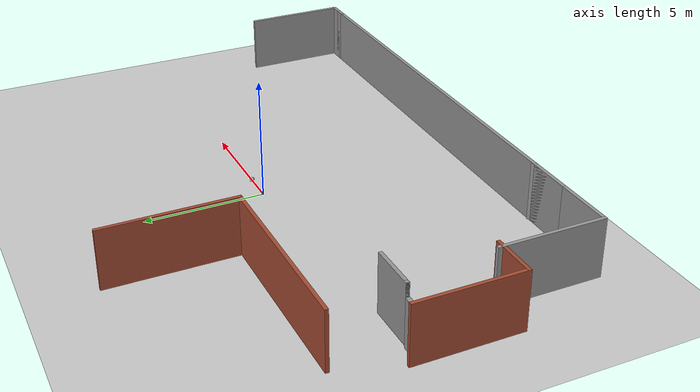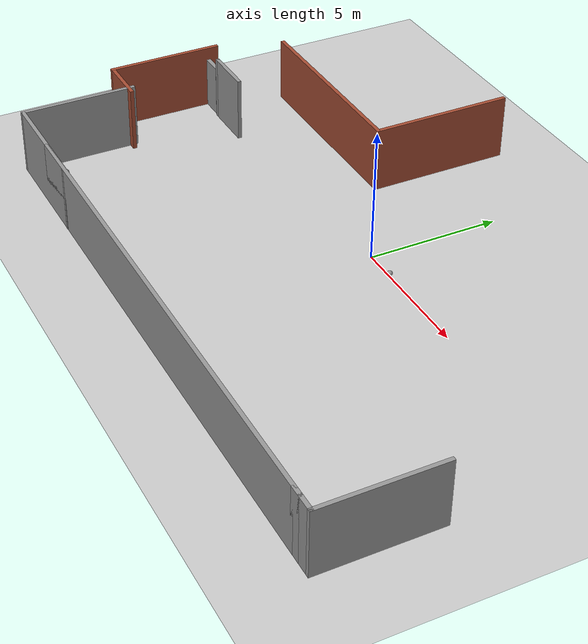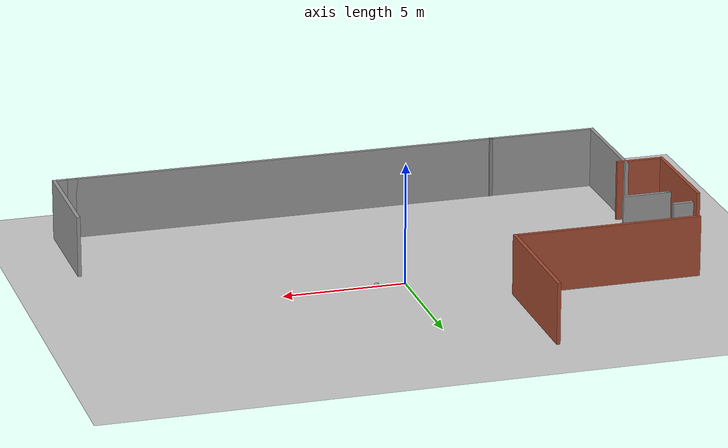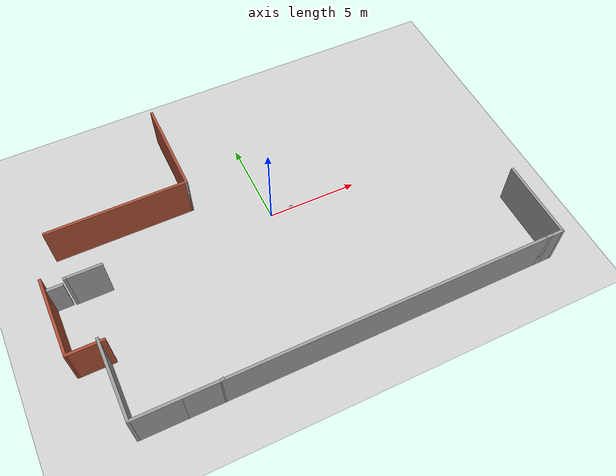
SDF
<sdf version="1.6">
 <world name="default">
  <model name="ground_plane">
   <static>1</static>
   <link name="link">
    <collision name="collision">
     <geometry><plane><normal>0 0 1</normal><size>100 100</size></plane></geometry>
     <surface>
      <contact><collide_bitmask>65535</collide_bitmask></contact>
      <friction><ode><mu>100</mu><mu2>50</mu2></ode></friction>
     </surface>
    </collision>
    <visual name="visual">
     <cast_shadows>0</cast_shadows>
     <geometry><plane><normal>0 0 1</normal><size>100 100</size></plane></geometry>
     <material>
      <script><uri>file://media/materials/scripts/gazebo.material</uri><name>Gazebo/Grey</name></script>
     </material>
    </visual>
   </link>
  </model>
  <model name="my_ball">
   <link name="link">
    <inertial>
     <mass>1</mass>
     <inertia><ixx>0.1</ixx><ixy>0</ixy><ixz>0</ixz><iyy>0.1</iyy><iyz>0</iyz><izz>0.1</izz></inertia>
    </inertial>
    <visual name="visual">
     <geometry><sphere><radius>0.1</radius></sphere></geometry>
     <material>
      <script><name>Gazebo/Grey</name><uri>file://media/materials/scripts/gazebo.material</uri></script>
      <shader type="pixel"><normal_map>__default__</normal_map></shader>
      <ambient>1 1 1 1</ambient>
      <diffuse>1 1 1 1</diffuse>
      <specular>1 1 1 1</specular>
      <emissive>1 1 1 1</emissive>
     </material>
    </visual>
    <collision name="collision">
     <geometry><sphere><radius>0.1</radius></sphere></geometry>
     <surface>
      <friction>
       <ode><mu>1</mu><mu2>1</mu2><fdir1>0 0 0</fdir1><slip1>0</slip1><slip2>0</slip2></ode>
       <torsional>
        <coefficient>1</coefficient>
        <patch_radius>0</patch_radius>
        <surface_radius>0</surface_radius>
        <use_patch_radius>1</use_patch_radius>
        <ode><slip>0</slip></ode>
       </torsional>
      </friction>
      <bounce><restitution_coefficient>0</restitution_coefficient><threshold>1e+06</threshold></bounce>
      <contact>
       <collide_without_contact>0</collide_without_contact>
       <collide_without_contact_bitmask>1</collide_without_contact_bitmask>
       <collide_bitmask>1</collide_bitmask>
       <ode>
        <soft_cfm>0</soft_cfm>
        <soft_erp>0.2</soft_erp>
        <kp>1e+13</kp>
        <kd>1</kd>
        <max_vel>0.01</max_vel>
        <min_depth>0</min_depth>
       </ode>
       <bullet>
        <split_impulse>1</split_impulse>
        <split_impulse_penetration_threshold>-0.01</split_impulse_penetration_threshold>
        <soft_cfm>0</soft_cfm>
        <soft_erp>0.2</soft_erp>
        <kp>1e+13</kp>
        <kd>1</kd>
       </bullet>
      </contact>
     </surface>
    </collision>
   </link>
   <static>0</static>
   <pose>1.2011 0.032789 0.1 0 -0 0</pose>
  </model>
  <model name="homeOffice.world">
   <link name="Wall_10">
    <pose>11.125 -2.16657 0 0 -0 0</pose>
    <visual name="Wall_10_Visual">
     <pose>0 0 1.25 0 -0 0</pose>
     <geometry><box><size>0.75 0.15 2.5</size></box></geometry>
     <material>
      <script><uri>file://media/materials/scripts/gazebo.material</uri><name>Gazebo/Grey</name></script>
      <ambient>1 1 1 1</ambient>
      <shader type="pixel"/>
      <diffuse>0.7 0.7 0.7 1</diffuse>
      <specular>0.01 0.01 0.01 1</specular>
      <emissive>0 0 0 1</emissive>
     </material>
     <meta><layer>0</layer></meta>
    </visual>
    <collision name="Wall_10_Collision">
     <pose>0 0 1.25 0 -0 0</pose>
     <geometry><box><size>0.75 0.15 2.5</size></box></geometry>
     <surface>
      <friction>
       <ode><mu>1</mu><mu2>1</mu2><fdir1>0 0 0</fdir1><slip1>0</slip1><slip2>0</slip2></ode>
       <torsional>
        <coefficient>1</coefficient>
        <patch_radius>0</patch_radius>
        <surface_radius>0</surface_radius>
        <use_patch_radius>1</use_patch_radius>
        <ode><slip>0</slip></ode>
       </torsional>
      </friction>
      <bounce><restitution_coefficient>0</restitution_coefficient><threshold>1e+06</threshold></bounce>
      <contact>
       <collide_without_contact>0</collide_without_contact>
       <collide_without_contact_bitmask>1</collide_without_contact_bitmask>
       <collide_bitmask>1</collide_bitmask>
       <ode>
        <soft_cfm>0</soft_cfm>
        <soft_erp>0.2</soft_erp>
        <kp>1e+13</kp>
        <kd>1</kd>
        <max_vel>0.01</max_vel>
        <min_depth>0</min_depth>
       </ode>
       <bullet>
        <split_impulse>1</split_impulse>
        <split_impulse_penetration_threshold>-0.01</split_impulse_penetration_threshold>
        <soft_cfm>0</soft_cfm>
        <soft_erp>0.2</soft_erp>
        <kp>1e+13</kp>
        <kd>1</kd>
       </bullet>
      </contact>
     </surface>
    </collision>
   </link>
   <link name="Wall_11">
    <pose>11.425 0.008428 0 0 -0 1.5708</pose>
    <visual name="Wall_11_Visual">
     <pose>0 0 1.25 0 -0 0</pose>
     <geometry><box><size>4.5 0.15 2.5</size></box></geometry>
     <material>
      <script><uri>file://media/materials/scripts/gazebo.material</uri><name>Gazebo/Grey</name></script>
      <ambient>1 1 1 1</ambient>
      <shader type="pixel"/>
      <diffuse>0.7 0.7 0.7 1</diffuse>
      <specular>0.01 0.01 0.01 1</specular>
      <emissive>0 0 0 1</emissive>
     </material>
     <meta><layer>0</layer></meta>
    </visual>
    <collision name="Wall_11_Collision">
     <pose>0 0 1.25 0 -0 0</pose>
     <geometry><box><size>4.5 0.15 2.5</size></box></geometry>
     <surface>
      <friction>
       <ode><mu>1</mu><mu2>1</mu2><fdir1>0 0 0</fdir1><slip1>0</slip1><slip2>0</slip2></ode>
       <torsional>
        <coefficient>1</coefficient>
        <patch_radius>0</patch_radius>
        <surface_radius>0</surface_radius>
        <use_patch_radius>1</use_patch_radius>
        <ode><slip>0</slip></ode>
       </torsional>
      </friction>
      <bounce><restitution_coefficient>0</restitution_coefficient><threshold>1e+06</threshold></bounce>
      <contact>
       <collide_without_contact>0</collide_without_contact>
       <collide_without_contact_bitmask>1</collide_without_contact_bitmask>
       <collide_bitmask>1</collide_bitmask>
       <ode>
        <soft_cfm>0</soft_cfm>
        <soft_erp>0.2</soft_erp>
        <kp>1e+13</kp>
        <kd>1</kd>
        <max_vel>0.01</max_vel>
        <min_depth>0</min_depth>
       </ode>
       <bullet>
        <split_impulse>1</split_impulse>
        <split_impulse_penetration_threshold>-0.01</split_impulse_penetration_threshold>
        <soft_cfm>0</soft_cfm>
        <soft_erp>0.2</soft_erp>
        <kp>1e+13</kp>
        <kd>1</kd>
       </bullet>
      </contact>
     </surface>
    </collision>
   </link>
   <link name="Wall_14">
    <pose>-11.425 0.008428 0 0 0 -1.5708</pose>
    <visual name="Wall_14_Visual">
     <pose>0 0 1.25 0 -0 0</pose>
     <geometry><box><size>4.5 0.15 2.5</size></box></geometry>
     <material>
      <script><uri>file://media/materials/scripts/gazebo.material</uri><name>Gazebo/Grey</name></script>
      <ambient>1 1 1 1</ambient>
      <shader type="pixel"/>
      <diffuse>0.7 0.7 0.7 1</diffuse>
      <specular>0.01 0.01 0.01 1</specular>
      <emissive>0 0 0 1</emissive>
     </material>
     <meta><layer>0</layer></meta>
    </visual>
    <collision name="Wall_14_Collision">
     <pose>0 0 1.25 0 -0 0</pose>
     <geometry><box><size>4.5 0.15 2.5</size></box></geometry>
     <surface>
      <friction>
       <ode><mu>1</mu><mu2>1</mu2><fdir1>0 0 0</fdir1><slip1>0</slip1><slip2>0</slip2></ode>
       <torsional>
        <coefficient>1</coefficient>
        <patch_radius>0</patch_radius>
        <surface_radius>0</surface_radius>
        <use_patch_radius>1</use_patch_radius>
        <ode><slip>0</slip></ode>
       </torsional>
      </friction>
      <bounce><restitution_coefficient>0</restitution_coefficient><threshold>1e+06</threshold></bounce>
      <contact>
       <collide_without_contact>0</collide_without_contact>
       <collide_without_contact_bitmask>1</collide_without_contact_bitmask>
       <collide_bitmask>1</collide_bitmask>
       <ode>
        <soft_cfm>0</soft_cfm>
        <soft_erp>0.2</soft_erp>
        <kp>1e+13</kp>
        <kd>1</kd>
        <max_vel>0.01</max_vel>
        <min_depth>0</min_depth>
       </ode>
       <bullet>
        <split_impulse>1</split_impulse>
        <split_impulse_penetration_threshold>-0.01</split_impulse_penetration_threshold>
        <soft_cfm>0</soft_cfm>
        <soft_erp>0.2</soft_erp>
        <kp>1e+13</kp>
        <kd>1</kd>
       </bullet>
      </contact>
     </surface>
    </collision>
   </link>
   <link name="Wall_15">
    <pose>-9.25 -2.16657 0 0 -0 0</pose>
    <visual name="Wall_15_Visual">
     <pose>0 0 1.25 0 -0 0</pose>
     <geometry><box><size>4.5 0.15 2.5</size></box></geometry>
     <material>
      <script><uri>file://media/materials/scripts/gazebo.material</uri><name>Gazebo/Grey</name></script>
      <ambient>1 1 1 1</ambient>
      <shader type="pixel"/>
      <diffuse>0.7 0.7 0.7 1</diffuse>
      <specular>0.01 0.01 0.01 1</specular>
      <emissive>0 0 0 1</emissive>
     </material>
     <meta><layer>0</layer></meta>
    </visual>
    <collision name="Wall_15_Collision">
     <pose>0 0 1.25 0 -0 0</pose>
     <geometry><box><size>4.5 0.15 2.5</size></box></geometry>
     <surface>
      <friction>
       <ode><mu>1</mu><mu2>1</mu2><fdir1>0 0 0</fdir1><slip1>0</slip1><slip2>0</slip2></ode>
       <torsional>
        <coefficient>1</coefficient>
        <patch_radius>0</patch_radius>
        <surface_radius>0</surface_radius>
        <use_patch_radius>1</use_patch_radius>
        <ode><slip>0</slip></ode>
       </torsional>
      </friction>
      <bounce><restitution_coefficient>0</restitution_coefficient><threshold>1e+06</threshold></bounce>
      <contact>
       <collide_without_contact>0</collide_without_contact>
       <collide_without_contact_bitmask>1</collide_without_contact_bitmask>
       <collide_bitmask>1</collide_bitmask>
       <ode>
        <soft_cfm>0</soft_cfm>
        <soft_erp>0.2</soft_erp>
        <kp>1e+13</kp>
        <kd>1</kd>
        <max_vel>0.01</max_vel>
        <min_depth>0</min_depth>
       </ode>
       <bullet>
        <split_impulse>1</split_impulse>
        <split_impulse_penetration_threshold>-0.01</split_impulse_penetration_threshold>
        <soft_cfm>0</soft_cfm>
        <soft_erp>0.2</soft_erp>
        <kp>1e+13</kp>
        <kd>1</kd>
       </bullet>
      </contact>
     </surface>
    </collision>
   </link>
   <link name="Wall_16">
    <pose>-7.0267 -2.15363 0 0 -0 0.261799</pose>
    <visual name="Wall_16_Visual">
     <pose>0 0 1.25 0 -0 0</pose>
     <geometry><box><size>0.25 0.15 2.5</size></box></geometry>
     <material>
      <script><uri>file://media/materials/scripts/gazebo.material</uri><name>Gazebo/Grey</name></script>
      <ambient>1 1 1 1</ambient>
      <shader type="pixel"/>
      <diffuse>0.7 0.7 0.7 1</diffuse>
      <specular>0.01 0.01 0.01 1</specular>
      <emissive>0 0 0 1</emissive>
     </material>
     <meta><layer>0</layer></meta>
    </visual>
    <collision name="Wall_16_Collision">
     <pose>0 0 1.25 0 -0 0</pose>
     <geometry><box><size>0.25 0.15 2.5</size></box></geometry>
     <surface>
      <friction>
       <ode><mu>1</mu><mu2>1</mu2><fdir1>0 0 0</fdir1><slip1>0</slip1><slip2>0</slip2></ode>
       <torsional>
        <coefficient>1</coefficient>
        <patch_radius>0</patch_radius>
        <surface_radius>0</surface_radius>
        <use_patch_radius>1</use_patch_radius>
        <ode><slip>0</slip></ode>
       </torsional>
      </friction>
      <bounce><restitution_coefficient>0</restitution_coefficient><threshold>1e+06</threshold></bounce>
      <contact>
       <collide_without_contact>0</collide_without_contact>
       <collide_without_contact_bitmask>1</collide_without_contact_bitmask>
       <collide_bitmask>1</collide_bitmask>
       <ode>
        <soft_cfm>0</soft_cfm>
        <soft_erp>0.2</soft_erp>
        <kp>1e+13</kp>
        <kd>1</kd>
        <max_vel>0.01</max_vel>
        <min_depth>0</min_depth>
       </ode>
       <bullet>
        <split_impulse>1</split_impulse>
        <split_impulse_penetration_threshold>-0.01</split_impulse_penetration_threshold>
        <soft_cfm>0</soft_cfm>
        <soft_erp>0.2</soft_erp>
        <kp>1e+13</kp>
        <kd>1</kd>
       </bullet>
      </contact>
     </surface>
    </collision>
   </link>
   <link name="Wall_8">
    <pose>0.8 -2.16657 0 0 -0 0</pose>
    <visual name="Wall_8_Visual">
     <pose>0 0 1.25 0 -0 0</pose>
     <geometry><box><size>19.5 0.15 2.5</size></box></geometry>
     <material>
      <script><uri>file://media/materials/scripts/gazebo.material</uri><name>Gazebo/Grey</name></script>
      <ambient>1 1 1 1</ambient>
      <shader type="pixel"/>
      <diffuse>0.7 0.7 0.7 1</diffuse>
      <specular>0.01 0.01 0.01 1</specular>
      <emissive>0 0 0 1</emissive>
     </material>
     <meta><layer>0</layer></meta>
    </visual>
    <collision name="Wall_8_Collision">
     <pose>0 0 1.25 0 -0 0</pose>
     <geometry><box><size>19.5 0.15 2.5</size></box></geometry>
     <surface>
      <friction>
       <ode><mu>1</mu><mu2>1</mu2><fdir1>0 0 0</fdir1><slip1>0</slip1><slip2>0</slip2></ode>
       <torsional>
        <coefficient>1</coefficient>
        <patch_radius>0</patch_radius>
        <surface_radius>0</surface_radius>
        <use_patch_radius>1</use_patch_radius>
        <ode><slip>0</slip></ode>
       </torsional>
      </friction>
      <bounce><restitution_coefficient>0</restitution_coefficient><threshold>1e+06</threshold></bounce>
      <contact>
       <collide_without_contact>0</collide_without_contact>
       <collide_without_contact_bitmask>1</collide_without_contact_bitmask>
       <collide_bitmask>1</collide_bitmask>
       <ode>
        <soft_cfm>0</soft_cfm>
        <soft_erp>0.2</soft_erp>
        <kp>1e+13</kp>
        <kd>1</kd>
        <max_vel>0.01</max_vel>
        <min_depth>0</min_depth>
       </ode>
       <bullet>
        <split_impulse>1</split_impulse>
        <split_impulse_penetration_threshold>-0.01</split_impulse_penetration_threshold>
        <soft_cfm>0</soft_cfm>
        <soft_erp>0.2</soft_erp>
        <kp>1e+13</kp>
        <kd>1</kd>
       </bullet>
      </contact>
     </surface>
    </collision>
   </link>
   <link name="Wall_9">
    <pose>10.65 -2.16657 0 0 -0 0</pose>
    <visual name="Wall_9_Visual">
     <pose>0 0 1.25 0 -0 0</pose>
     <geometry><box><size>0.5 0.15 2.5</size></box></geometry>
     <material>
      <script><uri>file://media/materials/scripts/gazebo.material</uri><name>Gazebo/Grey</name></script>
      <ambient>1 1 1 1</ambient>
      <shader type="pixel"/>
      <diffuse>0.7 0.7 0.7 1</diffuse>
      <specular>0.01 0.01 0.01 1</specular>
      <emissive>0 0 0 1</emissive>
     </material>
     <meta><layer>0</layer></meta>
    </visual>
    <collision name="Wall_9_Collision">
     <pose>0 0 1.25 0 -0 0</pose>
     <geometry><box><size>0.5 0.15 2.5</size></box></geometry>
     <surface>
      <friction>
       <ode><mu>1</mu><mu2>1</mu2><fdir1>0 0 0</fdir1><slip1>0</slip1><slip2>0</slip2></ode>
       <torsional>
        <coefficient>1</coefficient>
        <patch_radius>0</patch_radius>
        <surface_radius>0</surface_radius>
        <use_patch_radius>1</use_patch_radius>
        <ode><slip>0</slip></ode>
       </torsional>
      </friction>
      <bounce><restitution_coefficient>0</restitution_coefficient><threshold>1e+06</threshold></bounce>
      <contact>
       <collide_without_contact>0</collide_without_contact>
       <collide_without_contact_bitmask>1</collide_without_contact_bitmask>
       <collide_bitmask>1</collide_bitmask>
       <ode>
        <soft_cfm>0</soft_cfm>
        <soft_erp>0.2</soft_erp>
        <kp>1e+13</kp>
        <kd>1</kd>
        <max_vel>0.01</max_vel>
        <min_depth>0</min_depth>
       </ode>
       <bullet>
        <split_impulse>1</split_impulse>
        <split_impulse_penetration_threshold>-0.01</split_impulse_penetration_threshold>
        <soft_cfm>0</soft_cfm>
        <soft_erp>0.2</soft_erp>
        <kp>1e+13</kp>
        <kd>1</kd>
       </bullet>
      </contact>
     </surface>
    </collision>
   </link>
   <static>1</static>
   <pose>0.729 -6.62678 0 0 -0 0</pose>
  </model>
  <model name="homeOffice">
   <link name="Door_3">
    <pose>-13.5001 -2.06196 0 0 -0 0</pose>
    <visual name="Door_3_Visual">
     <pose>0 0 1 0 -0 0</pose>
     <geometry><box><size>0.9 0.17 2</size></box></geometry>
     <material>
      <script><uri>file://media/materials/scripts/gazebo.material</uri><name>Gazebo/Grey</name></script>
      <shader type="pixel"/>
      <ambient>0.3 0.3 0.3 1</ambient>
      <diffuse>0.7 0.7 0.7 1</diffuse>
      <specular>0.01 0.01 0.01 1</specular>
      <emissive>0 0 0 1</emissive>
     </material>
    </visual>
    <collision name="Door_3_Collision">
     <pose>0 0 1 0 -0 0</pose>
     <geometry><box><size>0.9 0.17 2</size></box></geometry>
     <surface>
      <friction>
       <ode><mu>1</mu><mu2>1</mu2><fdir1>0 0 0</fdir1><slip1>0</slip1><slip2>0</slip2></ode>
       <torsional>
        <coefficient>1</coefficient>
        <patch_radius>0</patch_radius>
        <surface_radius>0</surface_radius>
        <use_patch_radius>1</use_patch_radius>
        <ode><slip>0</slip></ode>
       </torsional>
      </friction>
      <bounce><restitution_coefficient>0</restitution_coefficient><threshold>1e+06</threshold></bounce>
      <contact>
       <collide_without_contact>0</collide_without_contact>
       <collide_without_contact_bitmask>1</collide_without_contact_bitmask>
       <collide_bitmask>1</collide_bitmask>
       <ode>
        <soft_cfm>0</soft_cfm>
        <soft_erp>0.2</soft_erp>
        <kp>1e+13</kp>
        <kd>1</kd>
        <max_vel>0.01</max_vel>
        <min_depth>0</min_depth>
       </ode>
       <bullet>
        <split_impulse>1</split_impulse>
        <split_impulse_penetration_threshold>-0.01</split_impulse_penetration_threshold>
        <soft_cfm>0</soft_cfm>
        <soft_erp>0.2</soft_erp>
        <kp>1e+13</kp>
        <kd>1</kd>
       </bullet>
      </contact>
     </surface>
    </collision>
   </link>
   <link name="Wall_51">
    <pose>-13.9728 -3.8896 0 0 0 -1.5708</pose>
    <visual name="Wall_51_Visual">
     <pose>0 0 1.25 0 -0 0</pose>
     <geometry><box><size>4.5 0.15 2.5</size></box></geometry>
     <material>
      <script><uri>file://media/materials/scripts/gazebo.material</uri><name>Gazebo/Bricks</name></script>
      <ambient>1 1 1 1</ambient>
      <shader type="pixel"/>
      <diffuse>1 1 1 1</diffuse>
      <specular>0.2 0.2 0.2 1</specular>
      <emissive>0 0 0 1</emissive>
     </material>
     <meta><layer>0</layer></meta>
    </visual>
    <collision name="Wall_51_Collision">
     <pose>0 0 1.25 0 -0 0</pose>
     <geometry><box><size>4.5 0.15 2.5</size></box></geometry>
     <surface>
      <friction>
       <ode><mu>1</mu><mu2>1</mu2><fdir1>0 0 0</fdir1><slip1>0</slip1><slip2>0</slip2></ode>
       <torsional>
        <coefficient>1</coefficient>
        <patch_radius>0</patch_radius>
        <surface_radius>0</surface_radius>
        <use_patch_radius>1</use_patch_radius>
        <ode><slip>0</slip></ode>
       </torsional>
      </friction>
      <bounce><restitution_coefficient>0</restitution_coefficient><threshold>1e+06</threshold></bounce>
      <contact>
       <collide_without_contact>0</collide_without_contact>
       <collide_without_contact_bitmask>1</collide_without_contact_bitmask>
       <collide_bitmask>1</collide_bitmask>
       <ode>
        <soft_cfm>0</soft_cfm>
        <soft_erp>0.2</soft_erp>
        <kp>1e+13</kp>
        <kd>1</kd>
        <max_vel>0.01</max_vel>
        <min_depth>0</min_depth>
       </ode>
       <bullet>
        <split_impulse>1</split_impulse>
        <split_impulse_penetration_threshold>-0.01</split_impulse_penetration_threshold>
        <soft_cfm>0</soft_cfm>
        <soft_erp>0.2</soft_erp>
        <kp>1e+13</kp>
        <kd>1</kd>
       </bullet>
      </contact>
     </surface>
    </collision>
   </link>
   <link name="Wall_52">
    <pose>-13.0478 -6.0646 0 0 -0 0</pose>
    <visual name="Wall_52_Visual">
     <pose>0 0 1.25 0 -0 0</pose>
     <geometry><box><size>2 0.15 2.5</size></box></geometry>
     <material>
      <script><uri>file://media/materials/scripts/gazebo.material</uri><name>Gazebo/Bricks</name></script>
      <ambient>1 1 1 1</ambient>
      <shader type="pixel"/>
      <diffuse>1 1 1 1</diffuse>
      <specular>0.2 0.2 0.2 1</specular>
      <emissive>0 0 0 1</emissive>
     </material>
     <meta><layer>0</layer></meta>
    </visual>
    <collision name="Wall_52_Collision">
     <pose>0 0 1.25 0 -0 0</pose>
     <geometry><box><size>2 0.15 2.5</size></box></geometry>
     <surface>
      <friction>
       <ode><mu>1</mu><mu2>1</mu2><fdir1>0 0 0</fdir1><slip1>0</slip1><slip2>0</slip2></ode>
       <torsional>
        <coefficient>1</coefficient>
        <patch_radius>0</patch_radius>
        <surface_radius>0</surface_radius>
        <use_patch_radius>1</use_patch_radius>
        <ode><slip>0</slip></ode>
       </torsional>
      </friction>
      <bounce><restitution_coefficient>0</restitution_coefficient><threshold>1e+06</threshold></bounce>
      <contact>
       <collide_without_contact>0</collide_without_contact>
       <collide_without_contact_bitmask>1</collide_without_contact_bitmask>
       <collide_bitmask>1</collide_bitmask>
       <ode>
        <soft_cfm>0</soft_cfm>
        <soft_erp>0.2</soft_erp>
        <kp>1e+13</kp>
        <kd>1</kd>
        <max_vel>0.01</max_vel>
        <min_depth>0</min_depth>
       </ode>
       <bullet>
        <split_impulse>1</split_impulse>
        <split_impulse_penetration_threshold>-0.01</split_impulse_penetration_threshold>
        <soft_cfm>0</soft_cfm>
        <soft_erp>0.2</soft_erp>
        <kp>1e+13</kp>
        <kd>1</kd>
       </bullet>
      </contact>
     </surface>
    </collision>
   </link>
   <link name="Wall_56">
    <pose>-11.9478 -2.1146 0 0 -0 3.14159</pose>
    <visual name="Wall_56_Visual">
     <pose>0 0 1.25 0 -0 0</pose>
     <geometry><box><size>2 0.15 2.5</size></box></geometry>
     <material>
      <script><uri>file://media/materials/scripts/gazebo.material</uri><name>Gazebo/Grey</name></script>
      <ambient>1 1 1 1</ambient>
      <shader type="pixel"/>
      <diffuse>0.7 0.7 0.7 1</diffuse>
      <specular>0.01 0.01 0.01 1</specular>
      <emissive>0 0 0 1</emissive>
     </material>
     <meta><layer>0</layer></meta>
    </visual>
    <collision name="Wall_56_Collision">
     <pose>0 0 1.25 0 -0 0</pose>
     <geometry><box><size>2 0.15 2.5</size></box></geometry>
     <surface>
      <friction>
       <ode><mu>1</mu><mu2>1</mu2><fdir1>0 0 0</fdir1><slip1>0</slip1><slip2>0</slip2></ode>
       <torsional>
        <coefficient>1</coefficient>
        <patch_radius>0</patch_radius>
        <surface_radius>0</surface_radius>
        <use_patch_radius>1</use_patch_radius>
        <ode><slip>0</slip></ode>
       </torsional>
      </friction>
      <bounce><restitution_coefficient>0</restitution_coefficient><threshold>1e+06</threshold></bounce>
      <contact>
       <collide_without_contact>0</collide_without_contact>
       <collide_without_contact_bitmask>1</collide_without_contact_bitmask>
       <collide_bitmask>1</collide_bitmask>
       <ode>
        <soft_cfm>0</soft_cfm>
        <soft_erp>0.2</soft_erp>
        <kp>1e+13</kp>
        <kd>1</kd>
        <max_vel>0.01</max_vel>
        <min_depth>0</min_depth>
       </ode>
       <bullet>
        <split_impulse>1</split_impulse>
        <split_impulse_penetration_threshold>-0.01</split_impulse_penetration_threshold>
        <soft_cfm>0</soft_cfm>
        <soft_erp>0.2</soft_erp>
        <kp>1e+13</kp>
        <kd>1</kd>
       </bullet>
      </contact>
     </surface>
    </collision>
   </link>
   <link name="Wall_57">
    <pose>-12.8728 -2.1146 0 0 -0 0</pose>
    <visual name="Wall_57_Visual">
     <pose>0 0 1.25 0 -0 0</pose>
     <geometry><box><size>0.15 0.15 2.5</size></box></geometry>
     <material>
      <script><uri>file://media/materials/scripts/gazebo.material</uri><name>Gazebo/Grey</name></script>
      <ambient>1 1 1 1</ambient>
      <shader type="pixel"/>
      <diffuse>0.7 0.7 0.7 1</diffuse>
      <specular>0.01 0.01 0.01 1</specular>
      <emissive>0 0 0 1</emissive>
     </material>
     <meta><layer>0</layer></meta>
    </visual>
    <collision name="Wall_57_Collision">
     <pose>0 0 1.25 0 -0 0</pose>
     <geometry><box><size>0.15 0.15 2.5</size></box></geometry>
     <surface>
      <friction>
       <ode><mu>1</mu><mu2>1</mu2><fdir1>0 0 0</fdir1><slip1>0</slip1><slip2>0</slip2></ode>
       <torsional>
        <coefficient>1</coefficient>
        <patch_radius>0</patch_radius>
        <surface_radius>0</surface_radius>
        <use_patch_radius>1</use_patch_radius>
        <ode><slip>0</slip></ode>
       </torsional>
      </friction>
      <bounce><restitution_coefficient>0</restitution_coefficient><threshold>1e+06</threshold></bounce>
      <contact>
       <collide_without_contact>0</collide_without_contact>
       <collide_without_contact_bitmask>1</collide_without_contact_bitmask>
       <collide_bitmask>1</collide_bitmask>
       <ode>
        <soft_cfm>0</soft_cfm>
        <soft_erp>0.2</soft_erp>
        <kp>1e+13</kp>
        <kd>1</kd>
        <max_vel>0.01</max_vel>
        <min_depth>0</min_depth>
       </ode>
       <bullet>
        <split_impulse>1</split_impulse>
        <split_impulse_penetration_threshold>-0.01</split_impulse_penetration_threshold>
        <soft_cfm>0</soft_cfm>
        <soft_erp>0.2</soft_erp>
        <kp>1e+13</kp>
        <kd>1</kd>
       </bullet>
      </contact>
     </surface>
    </collision>
   </link>
   <link name="Wall_61">
    <pose>-9.27721 0.8446 0 0 -0 0</pose>
    <visual name="Wall_61_Visual">
     <pose>0 0 1.25 0 -0 0</pose>
     <geometry><box><size>7.75 0.15 2.5</size></box></geometry>
     <material>
      <script><uri>file://media/materials/scripts/gazebo.material</uri><name>Gazebo/Bricks</name></script>
      <ambient>1 1 1 1</ambient>
      <shader type="pixel"/>
      <diffuse>1 1 1 1</diffuse>
      <specular>0.2 0.2 0.2 1</specular>
      <emissive>0 0 0 1</emissive>
     </material>
     <meta><layer>0</layer></meta>
    </visual>
    <collision name="Wall_61_Collision">
     <pose>0 0 1.25 0 -0 0</pose>
     <geometry><box><size>7.75 0.15 2.5</size></box></geometry>
     <surface>
      <friction>
       <ode><mu>1</mu><mu2>1</mu2><fdir1>0 0 0</fdir1><slip1>0</slip1><slip2>0</slip2></ode>
       <torsional>
        <coefficient>1</coefficient>
        <patch_radius>0</patch_radius>
        <surface_radius>0</surface_radius>
        <use_patch_radius>1</use_patch_radius>
        <ode><slip>0</slip></ode>
       </torsional>
      </friction>
      <bounce><restitution_coefficient>0</restitution_coefficient><threshold>1e+06</threshold></bounce>
      <contact>
       <collide_without_contact>0</collide_without_contact>
       <collide_without_contact_bitmask>1</collide_without_contact_bitmask>
       <collide_bitmask>1</collide_bitmask>
       <ode>
        <soft_cfm>0</soft_cfm>
        <soft_erp>0.2</soft_erp>
        <kp>1e+13</kp>
        <kd>1</kd>
        <max_vel>0.01</max_vel>
        <min_depth>0</min_depth>
       </ode>
       <bullet>
        <split_impulse>1</split_impulse>
        <split_impulse_penetration_threshold>-0.01</split_impulse_penetration_threshold>
        <soft_cfm>0</soft_cfm>
        <soft_erp>0.2</soft_erp>
        <kp>1e+13</kp>
        <kd>1</kd>
       </bullet>
      </contact>
     </surface>
    </collision>
   </link>
   <link name="Wall_62">
    <pose>-5.47721 0.8446 0 0 -0 0</pose>
    <visual name="Wall_62_Visual">
     <pose>0 0 1.25 0 -0 0</pose>
     <geometry><box><size>0.15 0.15 2.5</size></box></geometry>
     <material>
      <script><uri>file://media/materials/scripts/gazebo.material</uri><name>Gazebo/Grey</name></script>
      <ambient>1 1 1 1</ambient>
      <shader type="pixel"/>
      <diffuse>0.7 0.7 0.7 1</diffuse>
      <specular>0.01 0.01 0.01 1</specular>
      <emissive>0 0 0 1</emissive>
     </material>
     <meta><layer>0</layer></meta>
    </visual>
    <collision name="Wall_62_Collision">
     <pose>0 0 1.25 0 -0 0</pose>
     <geometry><box><size>0.15 0.15 2.5</size></box></geometry>
     <surface>
      <friction>
       <ode><mu>1</mu><mu2>1</mu2><fdir1>0 0 0</fdir1><slip1>0</slip1><slip2>0</slip2></ode>
       <torsional>
        <coefficient>1</coefficient>
        <patch_radius>0</patch_radius>
        <surface_radius>0</surface_radius>
        <use_patch_radius>1</use_patch_radius>
        <ode><slip>0</slip></ode>
       </torsional>
      </friction>
      <bounce><restitution_coefficient>0</restitution_coefficient><threshold>1e+06</threshold></bounce>
      <contact>
       <collide_without_contact>0</collide_without_contact>
       <collide_without_contact_bitmask>1</collide_without_contact_bitmask>
       <collide_bitmask>1</collide_bitmask>
       <ode>
        <soft_cfm>0</soft_cfm>
        <soft_erp>0.2</soft_erp>
        <kp>1e+13</kp>
        <kd>1</kd>
        <max_vel>0.01</max_vel>
        <min_depth>0</min_depth>
       </ode>
       <bullet>
        <split_impulse>1</split_impulse>
        <split_impulse_penetration_threshold>-0.01</split_impulse_penetration_threshold>
        <soft_cfm>0</soft_cfm>
        <soft_erp>0.2</soft_erp>
        <kp>1e+13</kp>
        <kd>1</kd>
       </bullet>
      </contact>
     </surface>
    </collision>
   </link>
   <link name="Wall_64">
    <pose>-5.47721 3.5196 0 0 -0 1.5708</pose>
    <visual name="Wall_64_Visual">
     <pose>0 0 1.25 0 -0 0</pose>
     <geometry><box><size>5.5 0.15 2.5</size></box></geometry>
     <material>
      <script><uri>file://media/materials/scripts/gazebo.material</uri><name>Gazebo/Bricks</name></script>
      <ambient>1 1 1 1</ambient>
      <shader type="pixel"/>
      <diffuse>1 1 1 1</diffuse>
      <specular>0.2 0.2 0.2 1</specular>
      <emissive>0 0 0 1</emissive>
     </material>
     <meta><layer>0</layer></meta>
    </visual>
    <collision name="Wall_64_Collision">
     <pose>0 0 1.25 0 -0 0</pose>
     <geometry><box><size>5.5 0.15 2.5</size></box></geometry>
     <surface>
      <friction>
       <ode><mu>1</mu><mu2>1</mu2><fdir1>0 0 0</fdir1><slip1>0</slip1><slip2>0</slip2></ode>
       <torsional>
        <coefficient>1</coefficient>
        <patch_radius>0</patch_radius>
        <surface_radius>0</surface_radius>
        <use_patch_radius>1</use_patch_radius>
        <ode><slip>0</slip></ode>
       </torsional>
      </friction>
      <bounce><restitution_coefficient>0</restitution_coefficient><threshold>1e+06</threshold></bounce>
      <contact>
       <collide_without_contact>0</collide_without_contact>
       <collide_without_contact_bitmask>1</collide_without_contact_bitmask>
       <collide_bitmask>1</collide_bitmask>
       <ode>
        <soft_cfm>0</soft_cfm>
        <soft_erp>0.2</soft_erp>
        <kp>1e+13</kp>
        <kd>1</kd>
        <max_vel>0.01</max_vel>
        <min_depth>0</min_depth>
       </ode>
       <bullet>
        <split_impulse>1</split_impulse>
        <split_impulse_penetration_threshold>-0.01</split_impulse_penetration_threshold>
        <soft_cfm>0</soft_cfm>
        <soft_erp>0.2</soft_erp>
        <kp>1e+13</kp>
        <kd>1</kd>
       </bullet>
      </contact>
     </surface>
    </collision>
   </link>
   <static>1</static>
   <pose>1.7028 1.4546 0 0 -0 0</pose>
  </model>
 </world>
</sdf>
